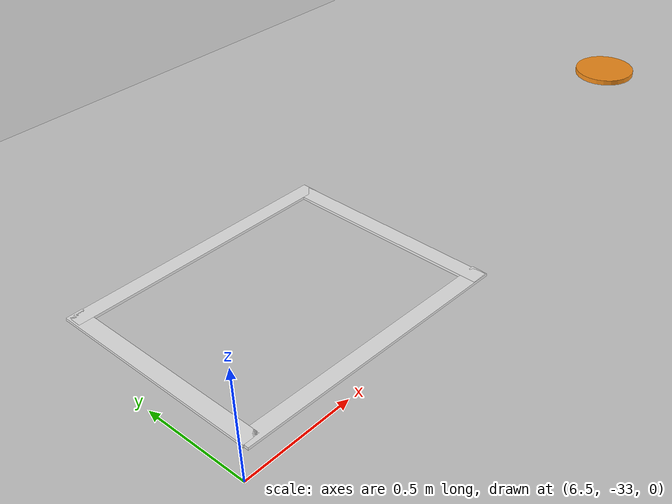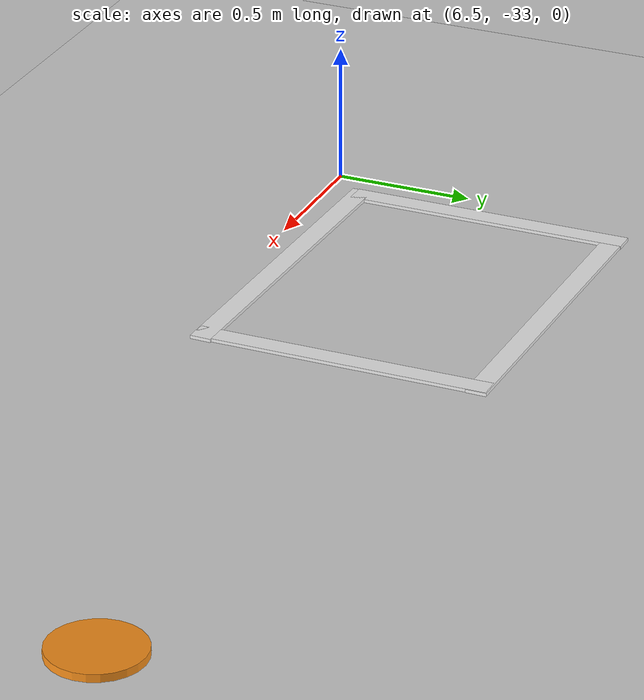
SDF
<sdf version="1.7">
 <world name="default">
  <model name="ground_plane">
   <static>1</static>
   <link name="link">
    <collision name="collision">
     <geometry><plane><normal>0 0 1</normal><size>5000 5000</size></plane></geometry>
     <surface><friction><ode><mu>100</mu><mu2>50</mu2></ode></friction></surface>
    </collision>
    <visual name="runway">
     <pose>0 0 0.005 0 -0 0</pose>
     <cast_shadows>0</cast_shadows>
     <geometry><plane><normal>0 0 1</normal><size>1829 45</size></plane></geometry>
     <material>
      <script><uri>file://media/materials/scripts/gazebo.material</uri><name>Gazebo/Runway</name></script>
     </material>
    </visual>
    <visual name="grass">
     <pose>0 0 -0.1 0 -0 0</pose>
     <cast_shadows>0</cast_shadows>
     <geometry><plane><normal>0 0 1</normal><size>5000 5000</size></plane></geometry>
     <material>
      <script><uri>file://media/materials/scripts/gazebo.material</uri><name>Gazebo/Grass</name></script>
     </material>
    </visual>
   </link>
  </model>
  <model name="Keranjang_silinder">
   <link name="link">
    <inertial>
     <mass>1</mass>
     <inertia><ixx>0.145833</ixx><ixy>0</ixy><ixz>0</ixz><iyy>0.145833</iyy><iyz>0</iyz><izz>0.125</izz></inertia>
    </inertial>
    <visual name="visual">
     <geometry><cylinder><radius>0.162222</radius><length>0.02735</length></cylinder></geometry>
     <material>
      <script><name>Gazebo/Orange</name><uri>file://media/materials/scripts/gazebo.material</uri></script>
      <shader type="pixel"><normal_map>__default__</normal_map></shader>
      <ambient>1 0.509 0.047 1</ambient>
      <diffuse>1 0.509 0.047 1</diffuse>
      <specular>0.5 0.5 0.5 1</specular>
      <emissive>0 0 0 1</emissive>
     </material>
    </visual>
    <collision name="collision">
     <geometry><cylinder><radius>0.162222</radius><length>0.02735</length></cylinder></geometry>
     <surface>
      <friction>
       <ode><mu>1</mu><mu2>1</mu2><fdir1>0 0 0</fdir1><slip1>0</slip1><slip2>0</slip2></ode>
       <torsional>
        <coefficient>1</coefficient>
        <patch_radius>0</patch_radius>
        <surface_radius>0</surface_radius>
        <use_patch_radius>1</use_patch_radius>
        <ode><slip>0</slip></ode>
       </torsional>
      </friction>
      <bounce><restitution_coefficient>0</restitution_coefficient><threshold>1e+06</threshold></bounce>
      <contact>
       <collide_without_contact>0</collide_without_contact>
       <collide_without_contact_bitmask>1</collide_without_contact_bitmask>
       <collide_bitmask>1</collide_bitmask>
       <ode>
        <soft_cfm>0</soft_cfm>
        <soft_erp>0.2</soft_erp>
        <kp>1e+13</kp>
        <kd>1</kd>
        <max_vel>0.01</max_vel>
        <min_depth>0</min_depth>
       </ode>
       <bullet>
        <split_impulse>1</split_impulse>
        <split_impulse_penetration_threshold>-0.01</split_impulse_penetration_threshold>
        <soft_cfm>0</soft_cfm>
        <soft_erp>0.2</soft_erp>
        <kp>1e+13</kp>
        <kd>1</kd>
       </bullet>
      </contact>
     </surface>
    </collision>
   </link>
   <static>0</static>
   <pose>9.88568 -32.311 0.013675 0 -0 0</pose>
  </model>
  <model name="Boundary">
   <link name="link">
    <inertial>
     <mass>0.000988784</mass>
     <inertia>
      <ixx>9.39484e-05</ixx>
      <ixy>0</ixy>
      <ixz>0</ixz>
      <iyy>4.82554e-07</iyy>
      <iyz>0</iyz>
      <izz>9.44064e-05</izz>
     </inertia>
    </inertial>
    <pose>-0.38245 -0.006786 -0.567861 0 -0 0</pose>
    <visual name="visual">
     <geometry><box><size>0.075545 1.06772 0.01222</size></box></geometry>
     <material>
      <script><name>Gazebo/White</name><uri>file://media/materials/scripts/gazebo.material</uri></script>
      <shader type="pixel"><normal_map>__default__</normal_map></shader>
      <ambient>1 1 1 1</ambient>
      <diffuse>1 1 1 1</diffuse>
      <specular>0 0 0 1</specular>
      <emissive>0 0 0 1</emissive>
     </material>
    </visual>
    <collision name="collision">
     <geometry><box><size>0.075545 1.06772 0.01222</size></box></geometry>
     <surface>
      <friction>
       <ode><mu>1</mu><mu2>1</mu2><fdir1>0 0 0</fdir1><slip1>0</slip1><slip2>0</slip2></ode>
       <torsional>
        <coefficient>1</coefficient>
        <patch_radius>0</patch_radius>
        <surface_radius>0</surface_radius>
        <use_patch_radius>1</use_patch_radius>
        <ode><slip>0</slip></ode>
       </torsional>
      </friction>
      <bounce><restitution_coefficient>0</restitution_coefficient><threshold>1e+06</threshold></bounce>
      <contact>
       <collide_without_contact>0</collide_without_contact>
       <collide_without_contact_bitmask>1</collide_without_contact_bitmask>
       <collide_bitmask>1</collide_bitmask>
       <ode>
        <soft_cfm>0</soft_cfm>
        <soft_erp>0.2</soft_erp>
        <kp>1e+13</kp>
        <kd>1</kd>
        <max_vel>0.01</max_vel>
        <min_depth>0</min_depth>
       </ode>
       <bullet>
        <split_impulse>1</split_impulse>
        <split_impulse_penetration_threshold>-0.01</split_impulse_penetration_threshold>
        <soft_cfm>0</soft_cfm>
        <soft_erp>0.2</soft_erp>
        <kp>1e+13</kp>
        <kd>1</kd>
       </bullet>
      </contact>
     </surface>
    </collision>
   </link>
   <link name="link_clone">
    <inertial>
     <mass>0.000958805</mass>
     <inertia>
      <ixx>8.56615e-05</ixx>
      <ixy>0</ixy>
      <ixz>0</ixz>
      <iyy>4.67927e-07</iyy>
      <iyz>0</iyz>
      <izz>8.61056e-05</izz>
     </inertia>
    </inertial>
    <pose>-1.60684 0.030613 -0.567861 0 -0 0</pose>
    <visual name="visual">
     <geometry><box><size>0.075545 1.03535 0.01222</size></box></geometry>
     <material>
      <script><name>Gazebo/White</name><uri>file://media/materials/scripts/gazebo.material</uri></script>
      <shader type="pixel"><normal_map>__default__</normal_map></shader>
      <ambient>1 1 1 1</ambient>
      <diffuse>1 1 1 1</diffuse>
      <specular>0 0 0 1</specular>
      <emissive>0 0 0 1</emissive>
     </material>
    </visual>
    <collision name="collision">
     <geometry><box><size>0.075545 1.03535 0.01222</size></box></geometry>
     <surface>
      <friction>
       <ode><mu>1</mu><mu2>1</mu2><fdir1>0 0 0</fdir1><slip1>0</slip1><slip2>0</slip2></ode>
       <torsional>
        <coefficient>1</coefficient>
        <patch_radius>0</patch_radius>
        <surface_radius>0</surface_radius>
        <use_patch_radius>1</use_patch_radius>
        <ode><slip>0</slip></ode>
       </torsional>
      </friction>
      <bounce><restitution_coefficient>0</restitution_coefficient><threshold>1e+06</threshold></bounce>
      <contact>
       <collide_without_contact>0</collide_without_contact>
       <collide_without_contact_bitmask>1</collide_without_contact_bitmask>
       <collide_bitmask>1</collide_bitmask>
       <ode>
        <soft_cfm>0</soft_cfm>
        <soft_erp>0.2</soft_erp>
        <kp>1e+13</kp>
        <kd>1</kd>
        <max_vel>0.01</max_vel>
        <min_depth>0</min_depth>
       </ode>
       <bullet>
        <split_impulse>1</split_impulse>
        <split_impulse_penetration_threshold>-0.01</split_impulse_penetration_threshold>
        <soft_cfm>0</soft_cfm>
        <soft_erp>0.2</soft_erp>
        <kp>1e+13</kp>
        <kd>1</kd>
       </bullet>
      </contact>
     </surface>
    </collision>
   </link>
   <link name="link_clone_0">
    <inertial>
     <mass>0.00120589</mass>
     <inertia>
      <ixx>0.000170408</ixx>
      <ixy>0</ixy>
      <ixz>0</ixz>
      <iyy>5.88511e-07</iyy>
      <iyz>0</iyz>
      <izz>0.000170966</izz>
     </inertia>
    </inertial>
    <pose>-0.989777 -0.489048 -0.567861 0 -0 1.54274</pose>
    <visual name="visual">
     <geometry><box><size>0.075545 1.30215 0.01222</size></box></geometry>
     <material>
      <script><name>Gazebo/White</name><uri>file://media/materials/scripts/gazebo.material</uri></script>
      <shader type="pixel"><normal_map>__default__</normal_map></shader>
      <ambient>1 1 1 1</ambient>
      <diffuse>1 1 1 1</diffuse>
      <specular>0 0 0 1</specular>
      <emissive>0 0 0 1</emissive>
     </material>
    </visual>
    <collision name="collision">
     <geometry><box><size>0.075545 1.30215 0.01222</size></box></geometry>
     <surface>
      <friction>
       <ode><mu>1</mu><mu2>1</mu2><fdir1>0 0 0</fdir1><slip1>0</slip1><slip2>0</slip2></ode>
       <torsional>
        <coefficient>1</coefficient>
        <patch_radius>0</patch_radius>
        <surface_radius>0</surface_radius>
        <use_patch_radius>1</use_patch_radius>
        <ode><slip>0</slip></ode>
       </torsional>
      </friction>
      <bounce><restitution_coefficient>0</restitution_coefficient><threshold>1e+06</threshold></bounce>
      <contact>
       <collide_without_contact>0</collide_without_contact>
       <collide_without_contact_bitmask>1</collide_without_contact_bitmask>
       <collide_bitmask>1</collide_bitmask>
       <ode>
        <soft_cfm>0</soft_cfm>
        <soft_erp>0.2</soft_erp>
        <kp>1e+13</kp>
        <kd>1</kd>
        <max_vel>0.01</max_vel>
        <min_depth>0</min_depth>
       </ode>
       <bullet>
        <split_impulse>1</split_impulse>
        <split_impulse_penetration_threshold>-0.01</split_impulse_penetration_threshold>
        <soft_cfm>0</soft_cfm>
        <soft_erp>0.2</soft_erp>
        <kp>1e+13</kp>
        <kd>1</kd>
       </bullet>
      </contact>
     </surface>
    </collision>
   </link>
   <link name="link_clone_1">
    <inertial>
     <mass>0.00119846</mass>
     <inertia>
      <ixx>0.000167279</ixx>
      <ixy>0</ixy>
      <ixz>0</ixz>
      <iyy>5.84885e-07</iyy>
      <iyz>0</iyz>
      <izz>0.000167834</izz>
     </inertia>
    </inertial>
    <pose>-0.988884 0.500919 -0.567861 0 -0 1.55851</pose>
    <visual name="visual">
     <geometry><box><size>0.075545 1.29414 0.01222</size></box></geometry>
     <material>
      <script><name>Gazebo/White</name><uri>file://media/materials/scripts/gazebo.material</uri></script>
      <shader type="pixel"><normal_map>__default__</normal_map></shader>
      <ambient>1 1 1 1</ambient>
      <diffuse>1 1 1 1</diffuse>
      <specular>0 0 0 1</specular>
      <emissive>0 0 0 1</emissive>
     </material>
    </visual>
    <collision name="collision">
     <geometry><box><size>0.075545 1.29414 0.01222</size></box></geometry>
     <surface>
      <friction>
       <ode><mu>1</mu><mu2>1</mu2><fdir1>0 0 0</fdir1><slip1>0</slip1><slip2>0</slip2></ode>
       <torsional>
        <coefficient>1</coefficient>
        <patch_radius>0</patch_radius>
        <surface_radius>0</surface_radius>
        <use_patch_radius>1</use_patch_radius>
        <ode><slip>0</slip></ode>
       </torsional>
      </friction>
      <bounce><restitution_coefficient>0</restitution_coefficient><threshold>1e+06</threshold></bounce>
      <contact>
       <collide_without_contact>0</collide_without_contact>
       <collide_without_contact_bitmask>1</collide_without_contact_bitmask>
       <collide_bitmask>1</collide_bitmask>
       <ode>
        <soft_cfm>0</soft_cfm>
        <soft_erp>0.2</soft_erp>
        <kp>1e+13</kp>
        <kd>1</kd>
        <max_vel>0.01</max_vel>
        <min_depth>0</min_depth>
       </ode>
       <bullet>
        <split_impulse>1</split_impulse>
        <split_impulse_penetration_threshold>-0.01</split_impulse_penetration_threshold>
        <soft_cfm>0</soft_cfm>
        <soft_erp>0.2</soft_erp>
        <kp>1e+13</kp>
        <kd>1</kd>
       </bullet>
      </contact>
     </surface>
    </collision>
   </link>
   <static>0</static>
   <pose>8.24313 -32.3983 0.574073 0 -0.000295 0</pose>
  </model>
 </world>
</sdf>
